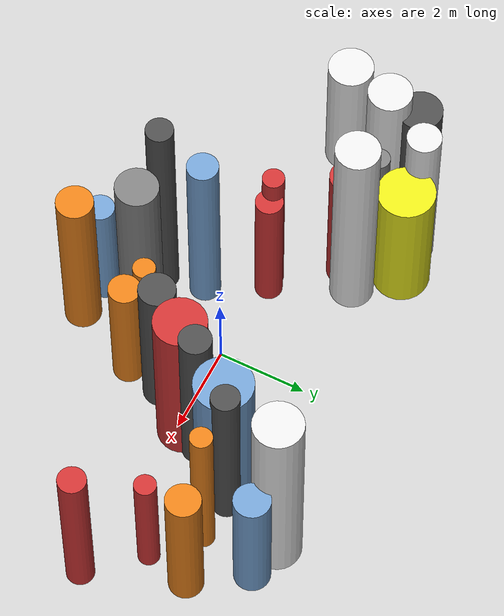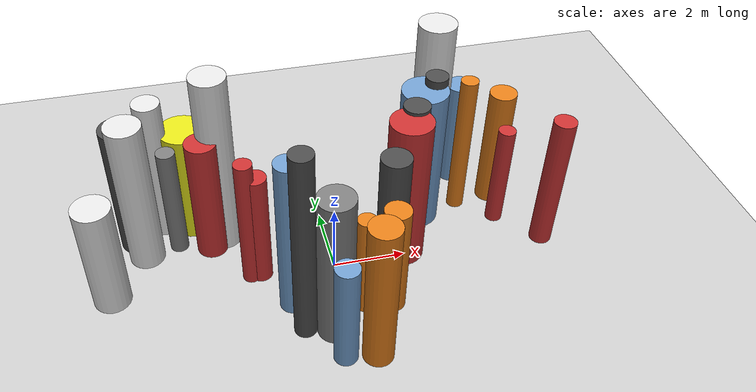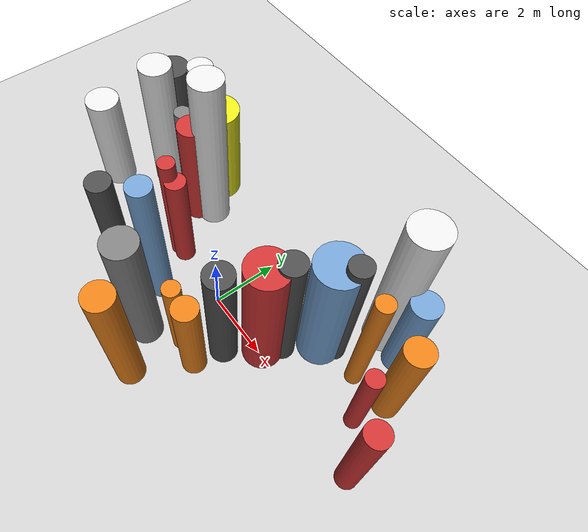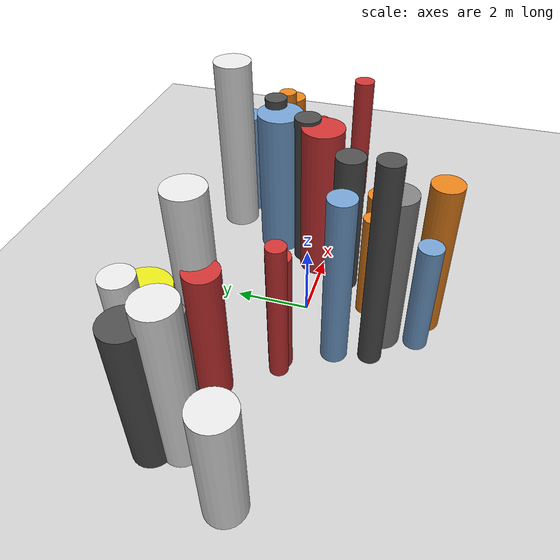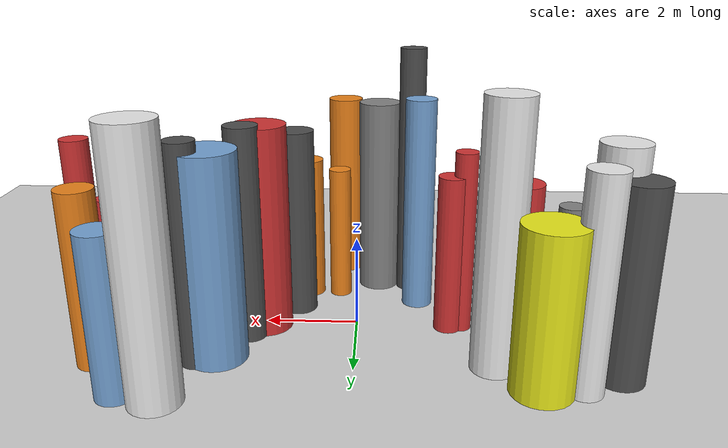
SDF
<?xml version='1.0'?>
<sdf version='1.6'>
  <world name='routeA_rl_v1__dense_recovery__rl_train__s_turn_multi_obstacle__000042'>
    <!-- Sun light -->
    <light name='sun' type='directional'>
      <cast_shadows>1</cast_shadows>
      <pose>0 0 10 0 0 0</pose>
      <diffuse>0.8 0.8 0.8 1</diffuse>
      <specular>0.2 0.2 0.2 1</specular>
      <attenuation>
        <range>1000</range>
        <constant>0.9</constant>
        <linear>0.01</linear>
        <quadratic>0.001</quadratic>
      </attenuation>
      <direction>-0.5 0.1 -0.9</direction>
    </light>

    <!-- Ground plane -->
    <model name='ground_plane'>
      <static>1</static>
      <link name='link'>
        <collision name='collision'>
          <geometry>
            <plane>
              <normal>0 0 1</normal>
              <size>100 100</size>
            </plane>
          </geometry>
          <surface>
            <contact>
              <collide_bitmask>65535</collide_bitmask>
              <ode/>
            </contact>
            <friction>
              <ode>
                <mu>100</mu>
                <mu2>50</mu2>
              </ode>
              <torsional><ode/></torsional>
            </friction>
            <bounce/>
          </surface>
          <max_contacts>10</max_contacts>
        </collision>
        <visual name='visual'>
          <cast_shadows>0</cast_shadows>
          <geometry>
            <plane>
              <normal>0 0 1</normal>
              <size>100 100</size>
            </plane>
          </geometry>
          <material>
            <script>
              <uri>file://media/materials/scripts/gazebo.material</uri>
              <n>Gazebo/Grey</n>
            </script>
          </material>
        </visual>
      </link>
    </model>

    <!-- Environment -->
    <magnetic_field>6e-06 2.3e-05 -4.2e-05</magnetic_field>
    <atmosphere type='adiabatic'/>
    <physics name='default_physics' default='0' type='ode'>
      <gravity>0 0 -9.8</gravity>
      <max_step_size>0.004</max_step_size>
      <real_time_factor>1</real_time_factor>
      <real_time_update_rate>250</real_time_update_rate>
    </physics>
    <scene>
      <ambient>0.4 0.4 0.4 1</ambient>
      <background>0.7 0.7 0.7 1</background>
      <shadows>1</shadows>
    </scene>
    <wind/>
    <spherical_coordinates>
      <surface_model>EARTH_WGS84</surface_model>
      <latitude_deg>0</latitude_deg>
      <longitude_deg>0</longitude_deg>
      <elevation>0</elevation>
      <heading_deg>0</heading_deg>
    </spherical_coordinates>

    <!-- ============ OBSTACLES (28) ============ -->
    <model name='s_turn_obs_0'>
      <static>1</static>
      <link name='link'>
        <visual name='visual'>
          <geometry>
            <cylinder>
              <radius>0.5024</radius>
              <length>3.3090</length>
            </cylinder>
          </geometry>
          <material>
            <script>
              <n>Gazebo/White</n>
              <uri>file://media/materials/scripts/gazebo.material</uri>
            </script>
            <ambient>0.9 0.9 0.9 1</ambient>
          </material>
        </visual>
        <collision name='collision'>
          <geometry>
            <cylinder>
              <radius>0.5024</radius>
              <length>3.3090</length>
            </cylinder>
          </geometry>
          <max_contacts>10</max_contacts>
          <surface>
            <contact><ode/></contact>
            <bounce/>
            <friction>
              <ode><mu>1</mu><mu2>1</mu2></ode>
              <torsional><ode/></torsional>
            </friction>
          </surface>
        </collision>
      </link>
      <pose>-6.0000 0.0957 1.6545 0 0 0.0000</pose>
    </model>

    <model name='s_turn_obs_1'>
      <static>1</static>
      <link name='link'>
        <visual name='visual'>
          <geometry>
            <cylinder>
              <radius>0.4887</radius>
              <length>4.0450</length>
            </cylinder>
          </geometry>
          <material>
            <script>
              <n>Gazebo/DarkGrey</n>
              <uri>file://media/materials/scripts/gazebo.material</uri>
            </script>
            <ambient>0.3 0.3 0.3 1</ambient>
          </material>
        </visual>
        <collision name='collision'>
          <geometry>
            <cylinder>
              <radius>0.4887</radius>
              <length>4.0450</length>
            </cylinder>
          </geometry>
          <max_contacts>10</max_contacts>
          <surface>
            <contact><ode/></contact>
            <bounce/>
            <friction>
              <ode><mu>1</mu><mu2>1</mu2></ode>
              <torsional><ode/></torsional>
            </friction>
          </surface>
        </collision>
      </link>
      <pose>-5.2000 2.1164 2.0225 0 0 0.0000</pose>
    </model>

    <model name='s_turn_obs_2'>
      <static>1</static>
      <link name='link'>
        <visual name='visual'>
          <geometry>
            <cylinder>
              <radius>0.3779</radius>
              <length>4.3899</length>
            </cylinder>
          </geometry>
          <material>
            <script>
              <n>Gazebo/White</n>
              <uri>file://media/materials/scripts/gazebo.material</uri>
            </script>
            <ambient>0.9 0.9 0.9 1</ambient>
          </material>
        </visual>
        <collision name='collision'>
          <geometry>
            <cylinder>
              <radius>0.3779</radius>
              <length>4.3899</length>
            </cylinder>
          </geometry>
          <max_contacts>10</max_contacts>
          <surface>
            <contact><ode/></contact>
            <bounce/>
            <friction>
              <ode><mu>1</mu><mu2>1</mu2></ode>
              <torsional><ode/></torsional>
            </friction>
          </surface>
        </collision>
      </link>
      <pose>-4.4000 2.5788 2.1949 0 0 0.0000</pose>
    </model>

    <model name='s_turn_obs_3'>
      <static>1</static>
      <link name='link'>
        <visual name='visual'>
          <geometry>
            <cylinder>
              <radius>0.6338</radius>
              <length>3.3852</length>
            </cylinder>
          </geometry>
          <material>
            <script>
              <n>Gazebo/Yellow</n>
              <uri>file://media/materials/scripts/gazebo.material</uri>
            </script>
            <ambient>0.9 0.9 0.1 1</ambient>
          </material>
        </visual>
        <collision name='collision'>
          <geometry>
            <cylinder>
              <radius>0.6338</radius>
              <length>3.3852</length>
            </cylinder>
          </geometry>
          <max_contacts>10</max_contacts>
          <surface>
            <contact><ode/></contact>
            <bounce/>
            <friction>
              <ode><mu>1</mu><mu2>1</mu2></ode>
              <torsional><ode/></torsional>
            </friction>
          </surface>
        </collision>
      </link>
      <pose>-3.6000 2.5938 1.6926 0 0 0.0000</pose>
    </model>

    <model name='s_turn_obs_4'>
      <static>1</static>
      <link name='link'>
        <visual name='visual'>
          <geometry>
            <cylinder>
              <radius>0.4855</radius>
              <length>5.5141</length>
            </cylinder>
          </geometry>
          <material>
            <script>
              <n>Gazebo/White</n>
              <uri>file://media/materials/scripts/gazebo.material</uri>
            </script>
            <ambient>0.9 0.9 0.9 1</ambient>
          </material>
        </visual>
        <collision name='collision'>
          <geometry>
            <cylinder>
              <radius>0.4855</radius>
              <length>5.5141</length>
            </cylinder>
          </geometry>
          <max_contacts>10</max_contacts>
          <surface>
            <contact><ode/></contact>
            <bounce/>
            <friction>
              <ode><mu>1</mu><mu2>1</mu2></ode>
              <torsional><ode/></torsional>
            </friction>
          </surface>
        </collision>
      </link>
      <pose>-2.8000 1.7765 2.7571 0 0 0.0000</pose>
    </model>

    <model name='s_turn_obs_5'>
      <static>1</static>
      <link name='link'>
        <visual name='visual'>
          <geometry>
            <cylinder>
              <radius>0.3045</radius>
              <length>3.4828</length>
            </cylinder>
          </geometry>
          <material>
            <script>
              <n>Gazebo/Red</n>
              <uri>file://media/materials/scripts/gazebo.material</uri>
            </script>
            <ambient>0.8 0.2 0.2 1</ambient>
          </material>
        </visual>
        <collision name='collision'>
          <geometry>
            <cylinder>
              <radius>0.3045</radius>
              <length>3.4828</length>
            </cylinder>
          </geometry>
          <max_contacts>10</max_contacts>
          <surface>
            <contact><ode/></contact>
            <bounce/>
            <friction>
              <ode><mu>1</mu><mu2>1</mu2></ode>
              <torsional><ode/></torsional>
            </friction>
          </surface>
        </collision>
      </link>
      <pose>-2.0000 0.1442 1.7414 0 0 0.0000</pose>
    </model>

    <model name='s_turn_obs_6'>
      <static>1</static>
      <link name='link'>
        <visual name='visual'>
          <geometry>
            <cylinder>
              <radius>0.3013</radius>
              <length>5.8185</length>
            </cylinder>
          </geometry>
          <material>
            <script>
              <n>Gazebo/DarkGrey</n>
              <uri>file://media/materials/scripts/gazebo.material</uri>
            </script>
            <ambient>0.3 0.3 0.3 1</ambient>
          </material>
        </visual>
        <collision name='collision'>
          <geometry>
            <cylinder>
              <radius>0.3013</radius>
              <length>5.8185</length>
            </cylinder>
          </geometry>
          <max_contacts>10</max_contacts>
          <surface>
            <contact><ode/></contact>
            <bounce/>
            <friction>
              <ode><mu>1</mu><mu2>1</mu2></ode>
              <torsional><ode/></torsional>
            </friction>
          </surface>
        </collision>
      </link>
      <pose>-1.2000 -1.9974 2.9092 0 0 0.0000</pose>
    </model>

    <model name='s_turn_obs_7'>
      <static>1</static>
      <link name='link'>
        <visual name='visual'>
          <geometry>
            <cylinder>
              <radius>0.3145</radius>
              <length>3.2051</length>
            </cylinder>
          </geometry>
          <material>
            <script>
              <n>Gazebo/Blue</n>
              <uri>file://media/materials/scripts/gazebo.material</uri>
            </script>
            <ambient>0.447 0.624 0.812 1</ambient>
          </material>
        </visual>
        <collision name='collision'>
          <geometry>
            <cylinder>
              <radius>0.3145</radius>
              <length>3.2051</length>
            </cylinder>
          </geometry>
          <max_contacts>10</max_contacts>
          <surface>
            <contact><ode/></contact>
            <bounce/>
            <friction>
              <ode><mu>1</mu><mu2>1</mu2></ode>
              <torsional><ode/></torsional>
            </friction>
          </surface>
        </collision>
      </link>
      <pose>-0.4000 -3.0627 1.6025 0 0 0.0000</pose>
    </model>

    <model name='s_turn_obs_8'>
      <static>1</static>
      <link name='link'>
        <visual name='visual'>
          <geometry>
            <cylinder>
              <radius>0.4060</radius>
              <length>4.4457</length>
            </cylinder>
          </geometry>
          <material>
            <script>
              <n>Gazebo/Orange</n>
              <uri>file://media/materials/scripts/gazebo.material</uri>
            </script>
            <ambient>0.9 0.5 0.1 1</ambient>
          </material>
        </visual>
        <collision name='collision'>
          <geometry>
            <cylinder>
              <radius>0.4060</radius>
              <length>4.4457</length>
            </cylinder>
          </geometry>
          <max_contacts>10</max_contacts>
          <surface>
            <contact><ode/></contact>
            <bounce/>
            <friction>
              <ode><mu>1</mu><mu2>1</mu2></ode>
              <torsional><ode/></torsional>
            </friction>
          </surface>
        </collision>
      </link>
      <pose>0.4000 -3.1811 2.2229 0 0 0.0000</pose>
    </model>

    <model name='s_turn_obs_9'>
      <static>1</static>
      <link name='link'>
        <visual name='visual'>
          <geometry>
            <cylinder>
              <radius>0.3517</radius>
              <length>3.3243</length>
            </cylinder>
          </geometry>
          <material>
            <script>
              <n>Gazebo/Orange</n>
              <uri>file://media/materials/scripts/gazebo.material</uri>
            </script>
            <ambient>0.9 0.5 0.1 1</ambient>
          </material>
        </visual>
        <collision name='collision'>
          <geometry>
            <cylinder>
              <radius>0.3517</radius>
              <length>3.3243</length>
            </cylinder>
          </geometry>
          <max_contacts>10</max_contacts>
          <surface>
            <contact><ode/></contact>
            <bounce/>
            <friction>
              <ode><mu>1</mu><mu2>1</mu2></ode>
              <torsional><ode/></torsional>
            </friction>
          </surface>
        </collision>
      </link>
      <pose>1.2000 -1.6149 1.6621 0 0 0.0000</pose>
    </model>

    <model name='s_turn_obs_10'>
      <static>1</static>
      <link name='link'>
        <visual name='visual'>
          <geometry>
            <cylinder>
              <radius>0.5756</radius>
              <length>4.5454</length>
            </cylinder>
          </geometry>
          <material>
            <script>
              <n>Gazebo/Red</n>
              <uri>file://media/materials/scripts/gazebo.material</uri>
            </script>
            <ambient>0.8 0.2 0.2 1</ambient>
          </material>
        </visual>
        <collision name='collision'>
          <geometry>
            <cylinder>
              <radius>0.5756</radius>
              <length>4.5454</length>
            </cylinder>
          </geometry>
          <max_contacts>10</max_contacts>
          <surface>
            <contact><ode/></contact>
            <bounce/>
            <friction>
              <ode><mu>1</mu><mu2>1</mu2></ode>
              <torsional><ode/></torsional>
            </friction>
          </surface>
        </collision>
      </link>
      <pose>2.0000 0.1427 2.2727 0 0 0.0000</pose>
    </model>

    <model name='s_turn_obs_11'>
      <static>1</static>
      <link name='link'>
        <visual name='visual'>
          <geometry>
            <cylinder>
              <radius>0.6393</radius>
              <length>4.3834</length>
            </cylinder>
          </geometry>
          <material>
            <script>
              <n>Gazebo/Blue</n>
              <uri>file://media/materials/scripts/gazebo.material</uri>
            </script>
            <ambient>0.447 0.624 0.812 1</ambient>
          </material>
        </visual>
        <collision name='collision'>
          <geometry>
            <cylinder>
              <radius>0.6393</radius>
              <length>4.3834</length>
            </cylinder>
          </geometry>
          <max_contacts>10</max_contacts>
          <surface>
            <contact><ode/></contact>
            <bounce/>
            <friction>
              <ode><mu>1</mu><mu2>1</mu2></ode>
              <torsional><ode/></torsional>
            </friction>
          </surface>
        </collision>
      </link>
      <pose>2.8000 1.5557 2.1917 0 0 0.0000</pose>
    </model>

    <model name='s_turn_obs_12'>
      <static>1</static>
      <link name='link'>
        <visual name='visual'>
          <geometry>
            <cylinder>
              <radius>0.5382</radius>
              <length>5.3343</length>
            </cylinder>
          </geometry>
          <material>
            <script>
              <n>Gazebo/White</n>
              <uri>file://media/materials/scripts/gazebo.material</uri>
            </script>
            <ambient>0.9 0.9 0.9 1</ambient>
          </material>
        </visual>
        <collision name='collision'>
          <geometry>
            <cylinder>
              <radius>0.5382</radius>
              <length>5.3343</length>
            </cylinder>
          </geometry>
          <max_contacts>10</max_contacts>
          <surface>
            <contact><ode/></contact>
            <bounce/>
            <friction>
              <ode><mu>1</mu><mu2>1</mu2></ode>
              <torsional><ode/></torsional>
            </friction>
          </surface>
        </collision>
      </link>
      <pose>3.6000 3.1932 2.6671 0 0 0.0000</pose>
    </model>

    <model name='s_turn_obs_13'>
      <static>1</static>
      <link name='link'>
        <visual name='visual'>
          <geometry>
            <cylinder>
              <radius>0.3984</radius>
              <length>3.3280</length>
            </cylinder>
          </geometry>
          <material>
            <script>
              <n>Gazebo/Blue</n>
              <uri>file://media/materials/scripts/gazebo.material</uri>
            </script>
            <ambient>0.447 0.624 0.812 1</ambient>
          </material>
        </visual>
        <collision name='collision'>
          <geometry>
            <cylinder>
              <radius>0.3984</radius>
              <length>3.3280</length>
            </cylinder>
          </geometry>
          <max_contacts>10</max_contacts>
          <surface>
            <contact><ode/></contact>
            <bounce/>
            <friction>
              <ode><mu>1</mu><mu2>1</mu2></ode>
              <torsional><ode/></torsional>
            </friction>
          </surface>
        </collision>
      </link>
      <pose>4.4000 3.0234 1.6640 0 0 0.0000</pose>
    </model>

    <model name='s_turn_obs_14'>
      <static>1</static>
      <link name='link'>
        <visual name='visual'>
          <geometry>
            <cylinder>
              <radius>0.3799</radius>
              <length>3.6981</length>
            </cylinder>
          </geometry>
          <material>
            <script>
              <n>Gazebo/Orange</n>
              <uri>file://media/materials/scripts/gazebo.material</uri>
            </script>
            <ambient>0.9 0.5 0.1 1</ambient>
          </material>
        </visual>
        <collision name='collision'>
          <geometry>
            <cylinder>
              <radius>0.3799</radius>
              <length>3.6981</length>
            </cylinder>
          </geometry>
          <max_contacts>10</max_contacts>
          <surface>
            <contact><ode/></contact>
            <bounce/>
            <friction>
              <ode><mu>1</mu><mu2>1</mu2></ode>
              <torsional><ode/></torsional>
            </friction>
          </surface>
        </collision>
      </link>
      <pose>5.2000 1.8830 1.8491 0 0 0.0000</pose>
    </model>

    <model name='s_turn_obs_15'>
      <static>1</static>
      <link name='link'>
        <visual name='visual'>
          <geometry>
            <cylinder>
              <radius>0.3056</radius>
              <length>4.1204</length>
            </cylinder>
          </geometry>
          <material>
            <script>
              <n>Gazebo/Red</n>
              <uri>file://media/materials/scripts/gazebo.material</uri>
            </script>
            <ambient>0.8 0.2 0.2 1</ambient>
          </material>
        </visual>
        <collision name='collision'>
          <geometry>
            <cylinder>
              <radius>0.3056</radius>
              <length>4.1204</length>
            </cylinder>
          </geometry>
          <max_contacts>10</max_contacts>
          <surface>
            <contact><ode/></contact>
            <bounce/>
            <friction>
              <ode><mu>1</mu><mu2>1</mu2></ode>
              <torsional><ode/></torsional>
            </friction>
          </surface>
        </collision>
      </link>
      <pose>6.0000 -0.1926 2.0602 0 0 0.0000</pose>
    </model>

    <model name='s_turn_obs2_0'>
      <static>1</static>
      <link name='link'>
        <visual name='visual'>
          <geometry>
            <cylinder>
              <radius>0.4859</radius>
              <length>4.5751</length>
            </cylinder>
          </geometry>
          <material>
            <script>
              <n>Gazebo/White</n>
              <uri>file://media/materials/scripts/gazebo.material</uri>
            </script>
            <ambient>0.9 0.9 0.9 1</ambient>
          </material>
        </visual>
        <collision name='collision'>
          <geometry>
            <cylinder>
              <radius>0.4859</radius>
              <length>4.5751</length>
            </cylinder>
          </geometry>
          <max_contacts>10</max_contacts>
          <surface>
            <contact><ode/></contact>
            <bounce/>
            <friction>
              <ode><mu>1</mu><mu2>1</mu2></ode>
              <torsional><ode/></torsional>
            </friction>
          </surface>
        </collision>
      </link>
      <pose>-5.0000 1.4821 2.2876 0 0 0.0000</pose>
    </model>

    <model name='s_turn_obs2_1'>
      <static>1</static>
      <link name='link'>
        <visual name='visual'>
          <geometry>
            <cylinder>
              <radius>0.2549</radius>
              <length>3.3978</length>
            </cylinder>
          </geometry>
          <material>
            <script>
              <n>Gazebo/Grey</n>
              <uri>file://media/materials/scripts/gazebo.material</uri>
            </script>
            <ambient>0.5 0.5 0.5 1</ambient>
          </material>
        </visual>
        <collision name='collision'>
          <geometry>
            <cylinder>
              <radius>0.2549</radius>
              <length>3.3978</length>
            </cylinder>
          </geometry>
          <max_contacts>10</max_contacts>
          <surface>
            <contact><ode/></contact>
            <bounce/>
            <friction>
              <ode><mu>1</mu><mu2>1</mu2></ode>
              <torsional><ode/></torsional>
            </friction>
          </surface>
        </collision>
      </link>
      <pose>-4.0909 1.6938 1.6989 0 0 0.0000</pose>
    </model>

    <model name='s_turn_obs2_2'>
      <static>1</static>
      <link name='link'>
        <visual name='visual'>
          <geometry>
            <cylinder>
              <radius>0.4266</radius>
              <length>3.7596</length>
            </cylinder>
          </geometry>
          <material>
            <script>
              <n>Gazebo/Red</n>
              <uri>file://media/materials/scripts/gazebo.material</uri>
            </script>
            <ambient>0.8 0.2 0.2 1</ambient>
          </material>
        </visual>
        <collision name='collision'>
          <geometry>
            <cylinder>
              <radius>0.4266</radius>
              <length>3.7596</length>
            </cylinder>
          </geometry>
          <max_contacts>10</max_contacts>
          <surface>
            <contact><ode/></contact>
            <bounce/>
            <friction>
              <ode><mu>1</mu><mu2>1</mu2></ode>
              <torsional><ode/></torsional>
            </friction>
          </surface>
        </collision>
      </link>
      <pose>-3.1818 1.4414 1.8798 0 0 0.0000</pose>
    </model>

    <model name='s_turn_obs2_3'>
      <static>1</static>
      <link name='link'>
        <visual name='visual'>
          <geometry>
            <cylinder>
              <radius>0.2436</radius>
              <length>3.9953</length>
            </cylinder>
          </geometry>
          <material>
            <script>
              <n>Gazebo/Red</n>
              <uri>file://media/materials/scripts/gazebo.material</uri>
            </script>
            <ambient>0.8 0.2 0.2 1</ambient>
          </material>
        </visual>
        <collision name='collision'>
          <geometry>
            <cylinder>
              <radius>0.2436</radius>
              <length>3.9953</length>
            </cylinder>
          </geometry>
          <max_contacts>10</max_contacts>
          <surface>
            <contact><ode/></contact>
            <bounce/>
            <friction>
              <ode><mu>1</mu><mu2>1</mu2></ode>
              <torsional><ode/></torsional>
            </friction>
          </surface>
        </collision>
      </link>
      <pose>-2.2727 0.1009 1.9976 0 0 0.0000</pose>
    </model>

    <model name='s_turn_obs2_4'>
      <static>1</static>
      <link name='link'>
        <visual name='visual'>
          <geometry>
            <cylinder>
              <radius>0.3443</radius>
              <length>4.8487</length>
            </cylinder>
          </geometry>
          <material>
            <script>
              <n>Gazebo/Blue</n>
              <uri>file://media/materials/scripts/gazebo.material</uri>
            </script>
            <ambient>0.447 0.624 0.812 1</ambient>
          </material>
        </visual>
        <collision name='collision'>
          <geometry>
            <cylinder>
              <radius>0.3443</radius>
              <length>4.8487</length>
            </cylinder>
          </geometry>
          <max_contacts>10</max_contacts>
          <surface>
            <contact><ode/></contact>
            <bounce/>
            <friction>
              <ode><mu>1</mu><mu2>1</mu2></ode>
              <torsional><ode/></torsional>
            </friction>
          </surface>
        </collision>
      </link>
      <pose>-1.3636 -1.0938 2.4244 0 0 0.0000</pose>
    </model>

    <model name='s_turn_obs2_5'>
      <static>1</static>
      <link name='link'>
        <visual name='visual'>
          <geometry>
            <cylinder>
              <radius>0.4754</radius>
              <length>4.5569</length>
            </cylinder>
          </geometry>
          <material>
            <script>
              <n>Gazebo/Grey</n>
              <uri>file://media/materials/scripts/gazebo.material</uri>
            </script>
            <ambient>0.5 0.5 0.5 1</ambient>
          </material>
        </visual>
        <collision name='collision'>
          <geometry>
            <cylinder>
              <radius>0.4754</radius>
              <length>4.5569</length>
            </cylinder>
          </geometry>
          <max_contacts>10</max_contacts>
          <surface>
            <contact><ode/></contact>
            <bounce/>
            <friction>
              <ode><mu>1</mu><mu2>1</mu2></ode>
              <torsional><ode/></torsional>
            </friction>
          </surface>
        </collision>
      </link>
      <pose>-0.4545 -2.1690 2.2784 0 0 0.0000</pose>
    </model>

    <model name='s_turn_obs2_6'>
      <static>1</static>
      <link name='link'>
        <visual name='visual'>
          <geometry>
            <cylinder>
              <radius>0.2496</radius>
              <length>3.1126</length>
            </cylinder>
          </geometry>
          <material>
            <script>
              <n>Gazebo/Orange</n>
              <uri>file://media/materials/scripts/gazebo.material</uri>
            </script>
            <ambient>0.9 0.5 0.1 1</ambient>
          </material>
        </visual>
        <collision name='collision'>
          <geometry>
            <cylinder>
              <radius>0.2496</radius>
              <length>3.1126</length>
            </cylinder>
          </geometry>
          <max_contacts>10</max_contacts>
          <surface>
            <contact><ode/></contact>
            <bounce/>
            <friction>
              <ode><mu>1</mu><mu2>1</mu2></ode>
              <torsional><ode/></torsional>
            </friction>
          </surface>
        </collision>
      </link>
      <pose>0.4545 -1.5527 1.5563 0 0 0.0000</pose>
    </model>

    <model name='s_turn_obs2_7'>
      <static>1</static>
      <link name='link'>
        <visual name='visual'>
          <geometry>
            <cylinder>
              <radius>0.4025</radius>
              <length>4.2118</length>
            </cylinder>
          </geometry>
          <material>
            <script>
              <n>Gazebo/DarkGrey</n>
              <uri>file://media/materials/scripts/gazebo.material</uri>
            </script>
            <ambient>0.3 0.3 0.3 1</ambient>
          </material>
        </visual>
        <collision name='collision'>
          <geometry>
            <cylinder>
              <radius>0.4025</radius>
              <length>4.2118</length>
            </cylinder>
          </geometry>
          <max_contacts>10</max_contacts>
          <surface>
            <contact><ode/></contact>
            <bounce/>
            <friction>
              <ode><mu>1</mu><mu2>1</mu2></ode>
              <torsional><ode/></torsional>
            </friction>
          </surface>
        </collision>
      </link>
      <pose>1.3636 -0.7349 2.1059 0 0 0.0000</pose>
    </model>

    <model name='s_turn_obs2_8'>
      <static>1</static>
      <link name='link'>
        <visual name='visual'>
          <geometry>
            <cylinder>
              <radius>0.3550</radius>
              <length>4.6341</length>
            </cylinder>
          </geometry>
          <material>
            <script>
              <n>Gazebo/DarkGrey</n>
              <uri>file://media/materials/scripts/gazebo.material</uri>
            </script>
            <ambient>0.3 0.3 0.3 1</ambient>
          </material>
        </visual>
        <collision name='collision'>
          <geometry>
            <cylinder>
              <radius>0.3550</radius>
              <length>4.6341</length>
            </cylinder>
          </geometry>
          <max_contacts>10</max_contacts>
          <surface>
            <contact><ode/></contact>
            <bounce/>
            <friction>
              <ode><mu>1</mu><mu2>1</mu2></ode>
              <torsional><ode/></torsional>
            </friction>
          </surface>
        </collision>
      </link>
      <pose>2.2727 0.6342 2.3170 0 0 0.0000</pose>
    </model>

    <model name='s_turn_obs2_9'>
      <static>1</static>
      <link name='link'>
        <visual name='visual'>
          <geometry>
            <cylinder>
              <radius>0.3112</radius>
              <length>4.6150</length>
            </cylinder>
          </geometry>
          <material>
            <script>
              <n>Gazebo/DarkGrey</n>
              <uri>file://media/materials/scripts/gazebo.material</uri>
            </script>
            <ambient>0.3 0.3 0.3 1</ambient>
          </material>
        </visual>
        <collision name='collision'>
          <geometry>
            <cylinder>
              <radius>0.3112</radius>
              <length>4.6150</length>
            </cylinder>
          </geometry>
          <max_contacts>10</max_contacts>
          <surface>
            <contact><ode/></contact>
            <bounce/>
            <friction>
              <ode><mu>1</mu><mu2>1</mu2></ode>
              <torsional><ode/></torsional>
            </friction>
          </surface>
        </collision>
      </link>
      <pose>3.1818 1.7946 2.3075 0 0 0.0000</pose>
    </model>

    <model name='s_turn_obs2_10'>
      <static>1</static>
      <link name='link'>
        <visual name='visual'>
          <geometry>
            <cylinder>
              <radius>0.2428</radius>
              <length>4.3747</length>
            </cylinder>
          </geometry>
          <material>
            <script>
              <n>Gazebo/Orange</n>
              <uri>file://media/materials/scripts/gazebo.material</uri>
            </script>
            <ambient>0.9 0.5 0.1 1</ambient>
          </material>
        </visual>
        <collision name='collision'>
          <geometry>
            <cylinder>
              <radius>0.2428</radius>
              <length>4.3747</length>
            </cylinder>
          </geometry>
          <max_contacts>10</max_contacts>
          <surface>
            <contact><ode/></contact>
            <bounce/>
            <friction>
              <ode><mu>1</mu><mu2>1</mu2></ode>
              <torsional><ode/></torsional>
            </friction>
          </surface>
        </collision>
      </link>
      <pose>4.0909 1.7201 2.1874 0 0 0.0000</pose>
    </model>

    <model name='s_turn_obs2_11'>
      <static>1</static>
      <link name='link'>
        <visual name='visual'>
          <geometry>
            <cylinder>
              <radius>0.2401</radius>
              <length>3.1678</length>
            </cylinder>
          </geometry>
          <material>
            <script>
              <n>Gazebo/Red</n>
              <uri>file://media/materials/scripts/gazebo.material</uri>
            </script>
            <ambient>0.8 0.2 0.2 1</ambient>
          </material>
        </visual>
        <collision name='collision'>
          <geometry>
            <cylinder>
              <radius>0.2401</radius>
              <length>3.1678</length>
            </cylinder>
          </geometry>
          <max_contacts>10</max_contacts>
          <surface>
            <contact><ode/></contact>
            <bounce/>
            <friction>
              <ode><mu>1</mu><mu2>1</mu2></ode>
              <torsional><ode/></torsional>
            </friction>
          </surface>
        </collision>
      </link>
      <pose>5.0000 0.8983 1.5839 0 0 0.0000</pose>
    </model>

    <!-- GUI camera -->
    <gui fullscreen='0'>
      <camera name='user_camera'>
        <pose>-15 0 18 0 0.85 0.15</pose>
        <view_controller>orbit</view_controller>
        <projection_type>perspective</projection_type>
      </camera>
    </gui>
  </world>
</sdf>
